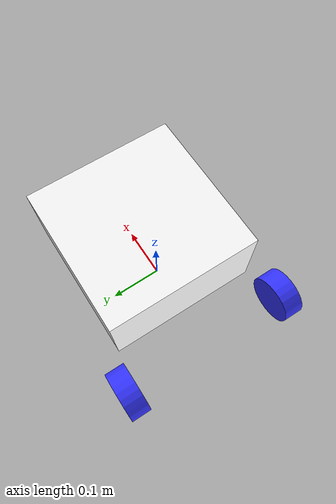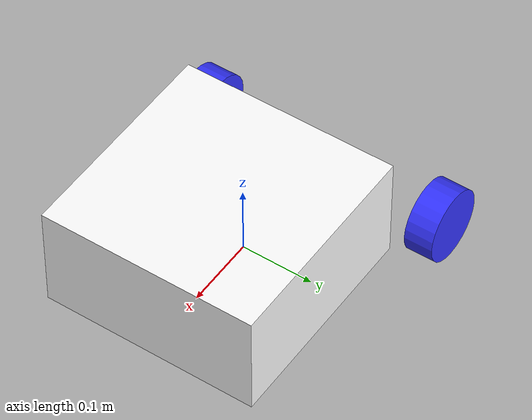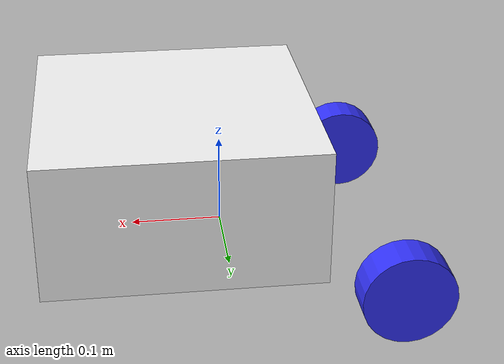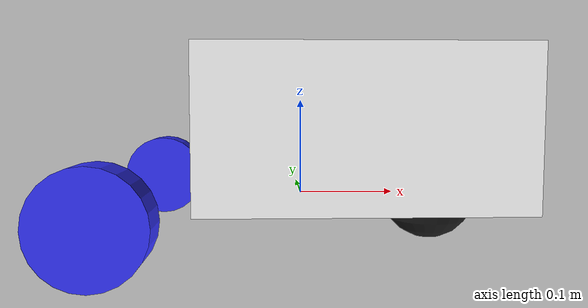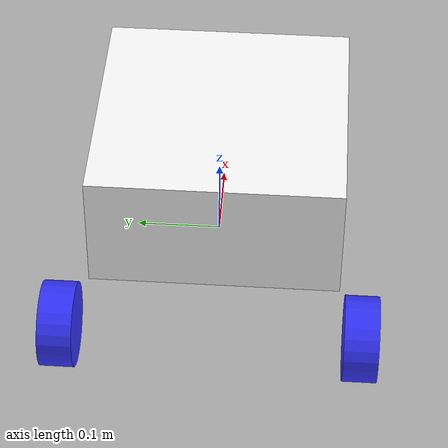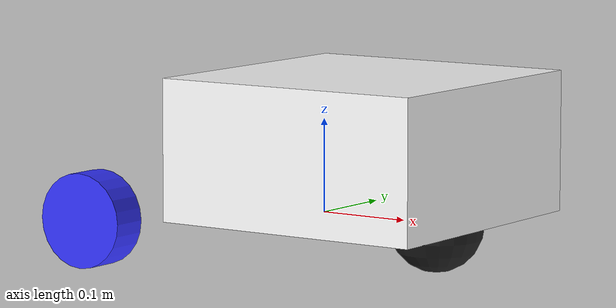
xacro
<?xml version="1.0"?>
<robot xmlns:xacro="http://www.ros.org/wiki/xacro"  >

    <xacro:include filename="inertial_macros.xacro"/>
    <material name="white">
        <color rgba="1 1 1 1" />

    </material>

    <material name="orange">
        <color rgba="1 0.3 0.1 1" />

    </material>

    <material name="blue">
        <color rgba="0.2 0.2 1 1" />

    </material>

    <material name="black">
        <color rgba="0 0 0 1" />

    </material>

    <material name="red">
        <color rgba="1 0 0 1" />

    </material>

<!-- base link -->
    <link name="base_link">

    </link>

    <!-- Base footprint link -->

<joint name="base_footprint_joint" type="fixed">
    <origin xyz="0.0 0.0 0.0" rpy="0.0 0.0 0.0"/>
    <parent link="base_link"/>
    <child link="base_footprint"/>
    <axis xyz="0.0 0.0 0.0"/>
    <limit lower="0.0" upper="0.0" effort="0.0" velocity="0.0"/>
</joint>

<link name="base_footprint">

</link>
<!-- chassis link -->
    <joint name="chassis_link" type="fixed">
        <parent link="base_link"/>
        <child link="chassis"/>
        <origin xyz="-0.1 0.0 0.0"/>
    </joint>
    <link name="chassis">
        <visual>
                <origin xyz="0.15 0.0 0.075"/>
                <geometry>
                    <box size="0.3 0.3 0.15"/>
                </geometry>
                <material name="white">

                </material>
        </visual>
        <collision>
                <origin xyz="0.15 0.0 0.075"/>
                <geometry>
                    <box size="0.3 0.3 0.15"/>
                </geometry>

        </collision>
        <xacro:inertial_box mass="0.5" x="0.3" y="0.3" z="0.15">
            <origin xyz="0.15 0 0.075" rpy="0.0 0.0 0.0"/>
        </xacro:inertial_box>

    </link>
    <gazebo reference="chassis">
        <material>
            Gazebo/White
        </material>
    </gazebo>
    <!-- left wheel joint-->
    <joint name = "left_wheel_Joint" type ="continuous">
        <parent link="base_link"/>
        <child link="left_wheel"/>
        <origin xyz="-0.175 0.175 0.0" rpy="-${pi/2} 0.0 0.0"/>
        <axis xyz="0.0 0.0 1"/>
    </joint>

    <link name="left_wheel">
        <visual name="">
            <origin xyz="0.0 0.0 0.0" rpy="0.0 0.0 0.0"/>
            <geometry>

                <cylinder radius="0.05" length="0.04"/>

            </geometry>
            <material name="blue"/>
        </visual>
        <collision>
            <origin xyz="0.0 0.0 0.0" rpy="0.0 0.0 0.0"/>
            <geometry>

                <cylinder radius="0.05" length="0.04"/>

            </geometry>
        </collision>
        <xacro:inertial_cylinder mass="0.1" length="0.04" radius="0.05">
            <origin xyz="0.0 0.0 0.0" rpy="0.0 0.0 0.0"/>
        </xacro:inertial_cylinder>
    </link>
    <gazebo reference="left_wheel">
        <material>
            Gazebo/Blue
        </material>
    </gazebo>

    <!-- right wheel joint-->

    <joint name = "right_wheel_Joint" type ="continuous">
        <parent link="base_link"/>
        <child link="right_wheel"/>
        <origin xyz="-0.175 -0.175 0.0" rpy="${pi/2} 0.0 0.0"/>
        <axis xyz="0.0 0.0 -1"/>
    </joint>

    <link name="right_wheel">
        <visual>
            <origin xyz="0.0 0.0 0.0" rpy="0.0 0.0 0.0"/>
            <geometry>
                    <cylinder radius="0.05" length="0.04"/>
            </geometry>
            <material name="blue"/>

        </visual>
        <collision>
            <origin xyz="0.0 0.0 0.0" rpy="0.0 0.0 0.0"/>
            <geometry>
                    <cylinder radius="0.05" length="0.04"/>
            </geometry>

        </collision>
        <xacro:inertial_cylinder mass="0.1" length="0.04" radius="0.05">
            <origin xyz="0.0 0.0 0.0" rpy="0.0 0.0 0.0"/>
        </xacro:inertial_cylinder>
    </link>

    <gazebo reference="right_wheel">
        <material>
            Gazebo/Blue
        </material>
    </gazebo>

    <!-- CASTER WHEEL LINK -->

    <joint name="caster_wheel_joint" type="fixed">

        <parent link="chassis"/>
        <child link="caster_wheel"/>
        <origin xyz="0.24 0.0 0.0"/>
    </joint>

    <link name="caster_wheel">

        <visual>
            <geometry>
                <sphere radius="0.05"/>
            </geometry>
            <material name="back">
            </material>
        </visual>
        <collision>
            <geometry>
                <sphere radius="0.05"/>
            </geometry>
        </collision>
        <xacro:inertial_sphere mass="0.1" radius="0.05">
            <origin xyz="0.0 0.0 0.0" rpy="0.0 0.0 0.0"/>
        </xacro:inertial_sphere>
    </link>

    <gazebo reference="caster_wheel">
        <material>
            Gazebo/Black
        </material>
        <mu1 value="0.001"/>
        <mu2 value="0.002"/>
    </gazebo>

</robot>
